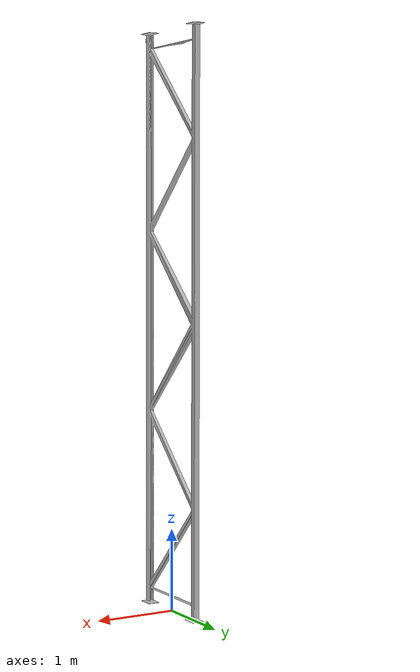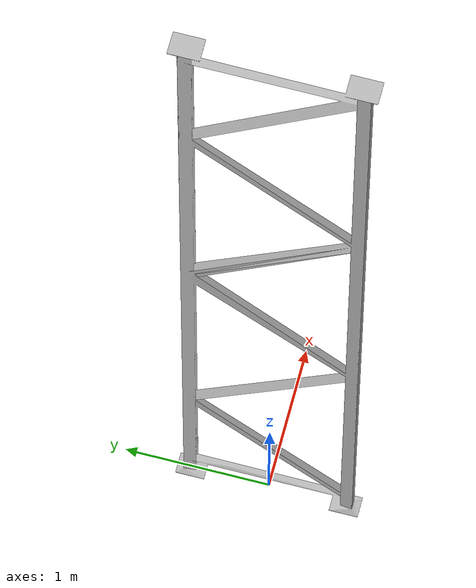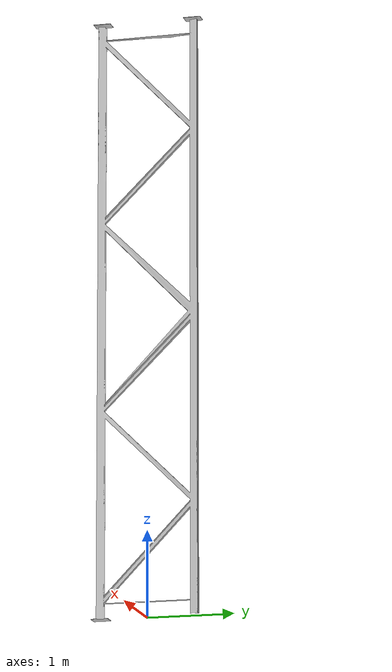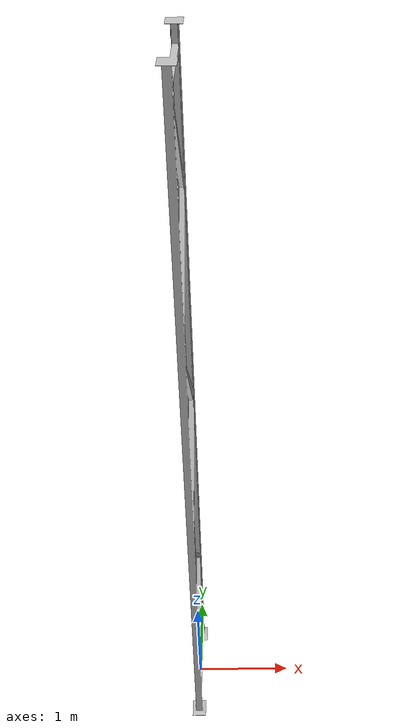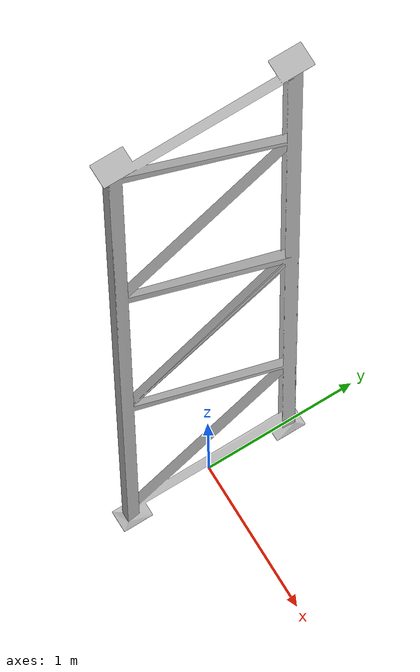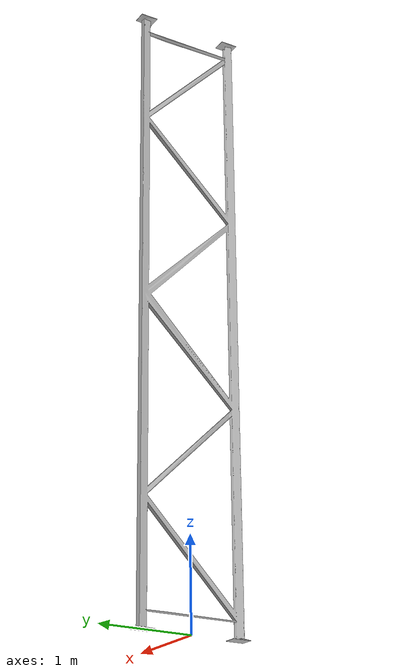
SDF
<?xml version='1.0'?>
<sdf version='1.6'>
  <model name='Shelf_Side'>
    <link name='shelf_side'>
      <pose frame=''>0 0 3.504 0 -0 0</pose>
      <inertial>
        <mass>10</mass>
        <inertia>
          <ixx>42.2684</ixx>
          <ixy>0</ixy>
          <ixz>0</ixz>
          <iyy>40.944</iyy>
          <iyz>0</iyz>
          <izz>1.35897</izz>
        </inertia>
      </inertial>
      <gravity>1</gravity>
      <self_collide>0</self_collide>
      <kinematic>0</kinematic>
      <enable_wind>0</enable_wind>
      <visual name='visual'>
        <pose frame=''>0 0 0 0 0 0</pose>
        <geometry>
          <mesh>
            <uri>model://Shelf_Side/meshes/Shelf Side Simplified.dae</uri>
          </mesh>
        </geometry>
        <transparency>0</transparency>
        <cast_shadows>0</cast_shadows>
      </visual>
      <collision name='collision'>
        <laser_retro>0</laser_retro>
        <pose frame=''>0 0 0 0 0 0</pose>
        <geometry>
          <mesh>
            <uri>model://Shelf_Side/meshes/Shelf Side Simplified.stl</uri>
          </mesh>
        </geometry>
      </collision>
    </link>
    <static>1</static>
  </model>
</sdf>
